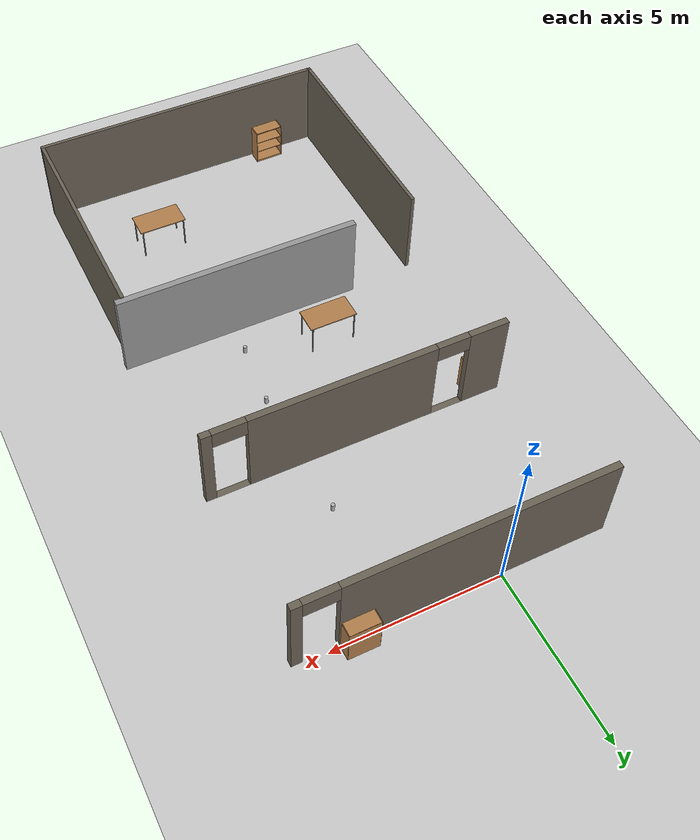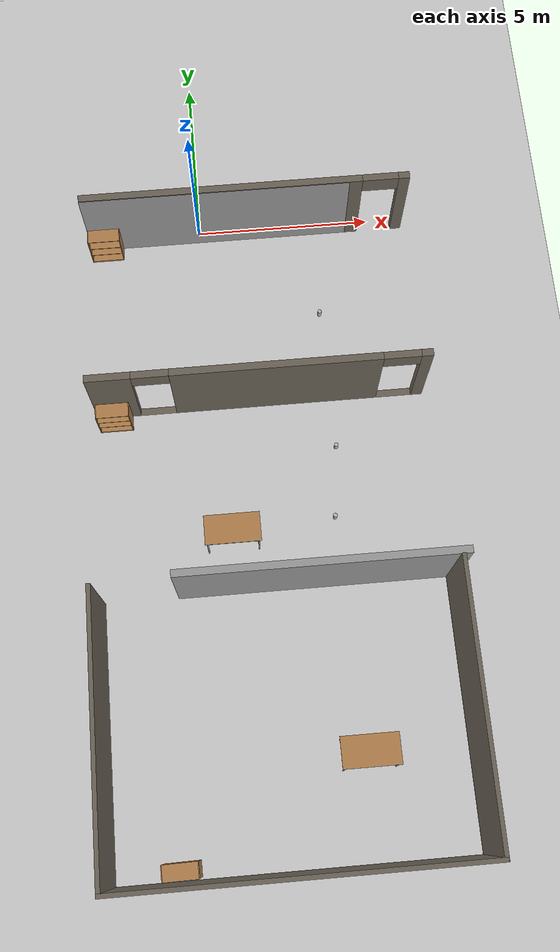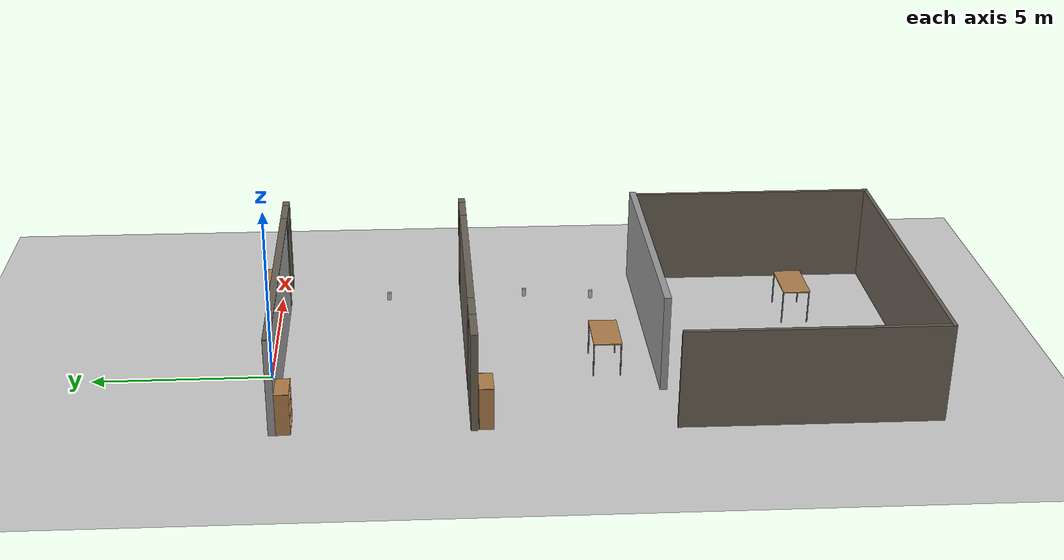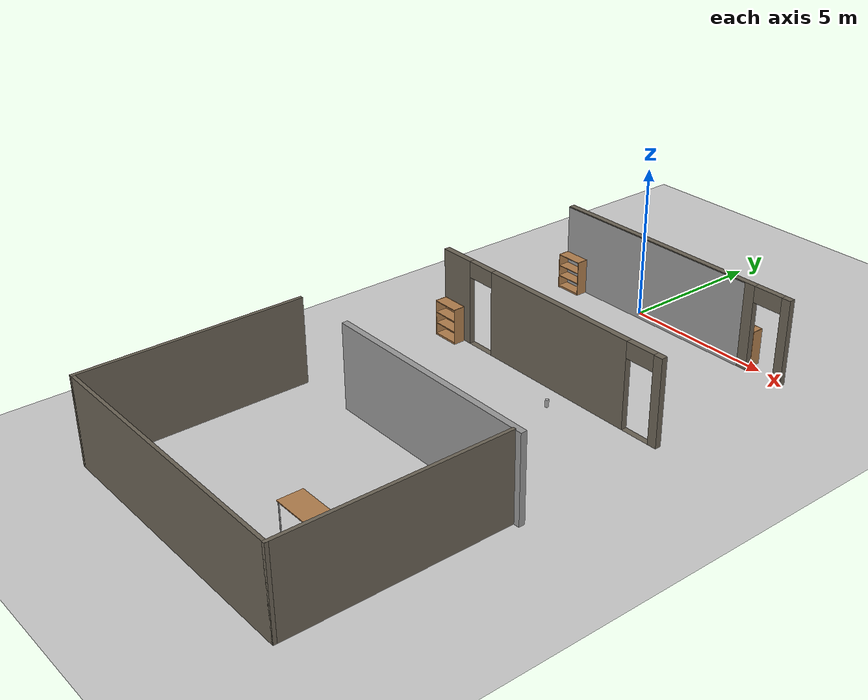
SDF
<sdf version="1.7">
 <world name="default">
  <light name="sun" type="directional">
   <pose>0 0 10 0 -0 0</pose>
   <diffuse>0.8 0.8 0.8 1</diffuse>
   <specular>0.2 0.2 0.2 1</specular>
   <attenuation>
    <range>1000</range>
    <constant>0.9</constant>
    <linear>0.01</linear>
    <quadratic>0.001</quadratic>
   </attenuation>
   <direction>-0.5 0.1 -0.9</direction>
   <spot><inner_angle>0</inner_angle><outer_angle>0</outer_angle><falloff>0</falloff></spot>
  </light>
  <model name="ground_plane">
   <static>1</static>
   <link name="link">
    <collision name="collision">
     <geometry><plane><normal>0 0 1</normal><size>100 100</size></plane></geometry>
     <surface><friction><ode><mu>100</mu><mu2>50</mu2></ode></friction></surface>
    </collision>
    <visual name="visual">
     <cast_shadows>0</cast_shadows>
     <geometry><plane><normal>0 0 1</normal><size>100 100</size></plane></geometry>
     <material>
      <script><uri>file://media/materials/scripts/gazebo.material</uri><name>Gazebo/Grey</name></script>
     </material>
    </visual>
   </link>
  </model>
  <gravity>0 0 -9.8</gravity>
  <magnetic_field>6e-06 2.3e-05 -4.2e-05</magnetic_field>
  <atmosphere type="adiabatic"/>
  <physics type="ode">
   <max_step_size>0.001</max_step_size>
   <real_time_factor>1</real_time_factor>
   <real_time_update_rate>1000</real_time_update_rate>
  </physics>
  <scene><ambient>0.4 0.4 0.4 1</ambient><background>0.7 0.7 0.7 1</background><shadows>1</shadows></scene>
  <spherical_coordinates>
   <surface_model>EARTH_WGS84</surface_model>
   <latitude_deg>0</latitude_deg>
   <longitude_deg>0</longitude_deg>
   <elevation>0</elevation>
   <heading_deg>0</heading_deg>
  </spherical_coordinates>
  <model name="table">
   <static>1</static>
   <link name="link">
    <collision name="surface">
     <pose>0 0 1 0 -0 0</pose>
     <geometry><box><size>1.5 0.8 0.03</size></box></geometry>
     <surface><friction><ode><mu>0.6</mu><mu2>0.6</mu2></ode></friction></surface>
    </collision>
    <visual name="visual1">
     <pose>0 0 1 0 -0 0</pose>
     <geometry><box><size>1.5 0.8 0.03</size></box></geometry>
     <material>
      <script><uri>file://media/materials/scripts/gazebo.material</uri><name>Gazebo/Wood</name></script>
     </material>
    </visual>
    <collision name="front_left_leg">
     <pose>0.68 0.38 0.5 0 -0 0</pose>
     <geometry><cylinder><radius>0.02</radius><length>1</length></cylinder></geometry>
    </collision>
    <visual name="front_left_leg">
     <pose>0.68 0.38 0.5 0 -0 0</pose>
     <geometry><cylinder><radius>0.02</radius><length>1</length></cylinder></geometry>
     <material>
      <script><uri>file://media/materials/scripts/gazebo.material</uri><name>Gazebo/Grey</name></script>
     </material>
    </visual>
    <collision name="front_right_leg">
     <pose>0.68 -0.38 0.5 0 -0 0</pose>
     <geometry><cylinder><radius>0.02</radius><length>1</length></cylinder></geometry>
    </collision>
    <visual name="front_right_leg">
     <pose>0.68 -0.38 0.5 0 -0 0</pose>
     <geometry><cylinder><radius>0.02</radius><length>1</length></cylinder></geometry>
     <material>
      <script><uri>file://media/materials/scripts/gazebo.material</uri><name>Gazebo/Grey</name></script>
     </material>
    </visual>
    <collision name="back_right_leg">
     <pose>-0.68 -0.38 0.5 0 -0 0</pose>
     <geometry><cylinder><radius>0.02</radius><length>1</length></cylinder></geometry>
    </collision>
    <visual name="back_right_leg">
     <pose>-0.68 -0.38 0.5 0 -0 0</pose>
     <geometry><cylinder><radius>0.02</radius><length>1</length></cylinder></geometry>
     <material>
      <script><uri>file://media/materials/scripts/gazebo.material</uri><name>Gazebo/Grey</name></script>
     </material>
    </visual>
    <collision name="back_left_leg">
     <pose>-0.68 0.38 0.5 0 -0 0</pose>
     <geometry><cylinder><radius>0.02</radius><length>1</length></cylinder></geometry>
    </collision>
    <visual name="back_left_leg">
     <pose>-0.68 0.38 0.5 0 -0 0</pose>
     <geometry><cylinder><radius>0.02</radius><length>1</length></cylinder></geometry>
     <material>
      <script><uri>file://media/materials/scripts/gazebo.material</uri><name>Gazebo/Grey</name></script>
     </material>
    </visual>
   </link>
   <pose>0.349528 -9.32869 0 0 -0 0</pose>
  </model>
  <model name="bookshelf">
   <static>1</static>
   <link name="link">
    <inertial><mass>1</mass></inertial>
    <collision name="back">
     <pose>0 0.005 0.6 0 -0 0</pose>
     <geometry><box><size>0.9 0.01 1.2</size></box></geometry>
    </collision>
    <visual name="visual1">
     <pose>0 0.005 0.6 0 -0 0</pose>
     <geometry><box><size>0.9 0.01 1.2</size></box></geometry>
     <material>
      <script><uri>file://media/materials/scripts/gazebo.material</uri><name>Gazebo/Wood</name></script>
     </material>
    </visual>
    <collision name="left_side">
     <pose>0.45 -0.195 0.6 0 -0 0</pose>
     <geometry><box><size>0.02 0.4 1.2</size></box></geometry>
    </collision>
    <visual name="visual2">
     <pose>0.45 -0.195 0.6 0 -0 0</pose>
     <geometry><box><size>0.02 0.4 1.2</size></box></geometry>
     <material>
      <script><uri>file://media/materials/scripts/gazebo.material</uri><name>Gazebo/Wood</name></script>
     </material>
    </visual>
    <collision name="right_side">
     <pose>-0.45 -0.195 0.6 0 -0 0</pose>
     <geometry><box><size>0.02 0.4 1.2</size></box></geometry>
    </collision>
    <visual name="visual3">
     <pose>-0.45 -0.195 0.6 0 -0 0</pose>
     <geometry><box><size>0.02 0.4 1.2</size></box></geometry>
     <material>
      <script><uri>file://media/materials/scripts/gazebo.material</uri><name>Gazebo/Wood</name></script>
     </material>
    </visual>
    <collision name="bottom">
     <pose>0 -0.195 0.03 0 -0 0</pose>
     <geometry><box><size>0.88 0.4 0.06</size></box></geometry>
    </collision>
    <visual name="visual4">
     <pose>0 -0.195 0.03 0 -0 0</pose>
     <geometry><box><size>0.88 0.4 0.06</size></box></geometry>
     <material>
      <script><uri>file://media/materials/scripts/gazebo.material</uri><name>Gazebo/Wood</name></script>
     </material>
    </visual>
    <collision name="top">
     <pose>0 -0.195 1.19 0 -0 0</pose>
     <geometry><box><size>0.88 0.4 0.02</size></box></geometry>
    </collision>
    <visual name="visual5">
     <pose>0 -0.195 1.19 0 -0 0</pose>
     <geometry><box><size>0.88 0.4 0.02</size></box></geometry>
     <material>
      <script><uri>file://media/materials/scripts/gazebo.material</uri><name>Gazebo/Wood</name></script>
     </material>
    </visual>
    <collision name="low_shelf">
     <pose>0 -0.195 0.43 0 -0 0</pose>
     <geometry><box><size>0.88 0.4 0.02</size></box></geometry>
    </collision>
    <visual name="visual6">
     <pose>0 -0.195 0.43 0 -0 0</pose>
     <geometry><box><size>0.88 0.4 0.02</size></box></geometry>
     <material>
      <script><uri>file://media/materials/scripts/gazebo.material</uri><name>Gazebo/Wood</name></script>
     </material>
    </visual>
    <collision name="high_shelf">
     <pose>0 -0.195 0.8 0 -0 0</pose>
     <geometry><box><size>0.88 0.4 0.02</size></box></geometry>
    </collision>
    <visual name="visual7">
     <pose>0 -0.195 0.8 0 -0 0</pose>
     <geometry><box><size>0.88 0.4 0.02</size></box></geometry>
     <material>
      <script><uri>file://media/materials/scripts/gazebo.material</uri><name>Gazebo/Wood</name></script>
     </material>
    </visual>
   </link>
   <pose>-2.68283 -5.62924 0 0 -0 0</pose>
  </model>
  <model name="beer">
   <link name="link">
    <pose>0 0 0.115 0 -0 0</pose>
    <inertial>
     <mass>0.39</mass>
     <inertia><ixx>0.00058</ixx><ixy>0</ixy><ixz>0</ixz><iyy>0.00058</iyy><iyz>0</iyz><izz>0.00019</izz></inertia>
    </inertial>
    <collision name="collision">
     <geometry><cylinder><radius>0.055</radius><length>0.23</length></cylinder></geometry>
    </collision>
    <visual name="visual">
     <geometry><cylinder><radius>0.055</radius><length>0.23</length></cylinder></geometry>
     <material>
      <script>
       <uri>model://beer/materials/scripts</uri>
       <uri>model://beer/materials/textures</uri>
       <name>Beer/Diffuse</name>
      </script>
     </material>
    </visual>
   </link>
   <pose>3.09989 -9.20005 0.77499 -1e-06 2.6e-05 0.030009</pose>
  </model>
  <model name="beer_0">
   <link name="link">
    <pose>0 0 0.115 0 -0 0</pose>
    <inertial>
     <mass>0.39</mass>
     <inertia><ixx>0.00058</ixx><ixy>0</ixy><ixz>0</ixz><iyy>0.00058</iyy><iyz>0</iyz><izz>0.00019</izz></inertia>
    </inertial>
    <collision name="collision">
     <geometry><cylinder><radius>0.055</radius><length>0.23</length></cylinder></geometry>
    </collision>
    <visual name="visual">
     <geometry><cylinder><radius>0.055</radius><length>0.23</length></cylinder></geometry>
     <material>
      <script>
       <uri>model://beer/materials/scripts</uri>
       <uri>model://beer/materials/textures</uri>
       <name>Beer/Diffuse</name>
      </script>
     </material>
    </visual>
   </link>
   <pose>3.25232 -3.26603 0.77499 1e-06 -2.8e-05 0.018189</pose>
  </model>
  <model name="table_1">
   <static>1</static>
   <link name="link">
    <collision name="surface">
     <pose>0 0 1 0 -0 0</pose>
     <geometry><box><size>1.5 0.8 0.03</size></box></geometry>
     <surface><friction><ode><mu>0.6</mu><mu2>0.6</mu2></ode></friction></surface>
    </collision>
    <visual name="visual1">
     <pose>0 0 1 0 -0 0</pose>
     <geometry><box><size>1.5 0.8 0.03</size></box></geometry>
     <material>
      <script><uri>file://media/materials/scripts/gazebo.material</uri><name>Gazebo/Wood</name></script>
     </material>
    </visual>
    <collision name="front_left_leg">
     <pose>0.68 0.38 0.5 0 -0 0</pose>
     <geometry><cylinder><radius>0.02</radius><length>1</length></cylinder></geometry>
    </collision>
    <visual name="front_left_leg">
     <pose>0.68 0.38 0.5 0 -0 0</pose>
     <geometry><cylinder><radius>0.02</radius><length>1</length></cylinder></geometry>
     <material>
      <script><uri>file://media/materials/scripts/gazebo.material</uri><name>Gazebo/Grey</name></script>
     </material>
    </visual>
    <collision name="front_right_leg">
     <pose>0.68 -0.38 0.5 0 -0 0</pose>
     <geometry><cylinder><radius>0.02</radius><length>1</length></cylinder></geometry>
    </collision>
    <visual name="front_right_leg">
     <pose>0.68 -0.38 0.5 0 -0 0</pose>
     <geometry><cylinder><radius>0.02</radius><length>1</length></cylinder></geometry>
     <material>
      <script><uri>file://media/materials/scripts/gazebo.material</uri><name>Gazebo/Grey</name></script>
     </material>
    </visual>
    <collision name="back_right_leg">
     <pose>-0.68 -0.38 0.5 0 -0 0</pose>
     <geometry><cylinder><radius>0.02</radius><length>1</length></cylinder></geometry>
    </collision>
    <visual name="back_right_leg">
     <pose>-0.68 -0.38 0.5 0 -0 0</pose>
     <geometry><cylinder><radius>0.02</radius><length>1</length></cylinder></geometry>
     <material>
      <script><uri>file://media/materials/scripts/gazebo.material</uri><name>Gazebo/Grey</name></script>
     </material>
    </visual>
    <collision name="back_left_leg">
     <pose>-0.68 0.38 0.5 0 -0 0</pose>
     <geometry><cylinder><radius>0.02</radius><length>1</length></cylinder></geometry>
    </collision>
    <visual name="back_left_leg">
     <pose>-0.68 0.38 0.5 0 -0 0</pose>
     <geometry><cylinder><radius>0.02</radius><length>1</length></cylinder></geometry>
     <material>
      <script><uri>file://media/materials/scripts/gazebo.material</uri><name>Gazebo/Grey</name></script>
     </material>
    </visual>
   </link>
   <pose>3.37991 -15.2712 0 0 -0 0</pose>
  </model>
  <model name="beer_4">
   <link name="link">
    <pose>0 0 0.115 0 -0 0</pose>
    <inertial>
     <mass>0.39</mass>
     <inertia><ixx>0.00058</ixx><ixy>0</ixy><ixz>0</ixz><iyy>0.00058</iyy><iyz>0</iyz><izz>0.00019</izz></inertia>
    </inertial>
    <collision name="collision">
     <geometry><cylinder><radius>0.055</radius><length>0.23</length></cylinder></geometry>
    </collision>
    <visual name="visual">
     <geometry><cylinder><radius>0.055</radius><length>0.23</length></cylinder></geometry>
     <material>
      <script>
       <uri>model://beer/materials/scripts</uri>
       <uri>model://beer/materials/textures</uri>
       <name>Beer/Diffuse</name>
      </script>
     </material>
    </visual>
   </link>
   <pose>3.32335 -7.24267 0.774992 6e-06 2.4e-05 0.032256</pose>
  </model>
  <model name="bookshelf_0">
   <static>1</static>
   <link name="link">
    <inertial><mass>1</mass></inertial>
    <collision name="back">
     <pose>0 0.005 0.6 0 -0 0</pose>
     <geometry><box><size>0.9 0.01 1.2</size></box></geometry>
    </collision>
    <visual name="visual1">
     <pose>0 0.005 0.6 0 -0 0</pose>
     <geometry><box><size>0.9 0.01 1.2</size></box></geometry>
     <material>
      <script><uri>file://media/materials/scripts/gazebo.material</uri><name>Gazebo/Wood</name></script>
     </material>
    </visual>
    <collision name="left_side">
     <pose>0.45 -0.195 0.6 0 -0 0</pose>
     <geometry><box><size>0.02 0.4 1.2</size></box></geometry>
    </collision>
    <visual name="visual2">
     <pose>0.45 -0.195 0.6 0 -0 0</pose>
     <geometry><box><size>0.02 0.4 1.2</size></box></geometry>
     <material>
      <script><uri>file://media/materials/scripts/gazebo.material</uri><name>Gazebo/Wood</name></script>
     </material>
    </visual>
    <collision name="right_side">
     <pose>-0.45 -0.195 0.6 0 -0 0</pose>
     <geometry><box><size>0.02 0.4 1.2</size></box></geometry>
    </collision>
    <visual name="visual3">
     <pose>-0.45 -0.195 0.6 0 -0 0</pose>
     <geometry><box><size>0.02 0.4 1.2</size></box></geometry>
     <material>
      <script><uri>file://media/materials/scripts/gazebo.material</uri><name>Gazebo/Wood</name></script>
     </material>
    </visual>
    <collision name="bottom">
     <pose>0 -0.195 0.03 0 -0 0</pose>
     <geometry><box><size>0.88 0.4 0.06</size></box></geometry>
    </collision>
    <visual name="visual4">
     <pose>0 -0.195 0.03 0 -0 0</pose>
     <geometry><box><size>0.88 0.4 0.06</size></box></geometry>
     <material>
      <script><uri>file://media/materials/scripts/gazebo.material</uri><name>Gazebo/Wood</name></script>
     </material>
    </visual>
    <collision name="top">
     <pose>0 -0.195 1.19 0 -0 0</pose>
     <geometry><box><size>0.88 0.4 0.02</size></box></geometry>
    </collision>
    <visual name="visual5">
     <pose>0 -0.195 1.19 0 -0 0</pose>
     <geometry><box><size>0.88 0.4 0.02</size></box></geometry>
     <material>
      <script><uri>file://media/materials/scripts/gazebo.material</uri><name>Gazebo/Wood</name></script>
     </material>
    </visual>
    <collision name="low_shelf">
     <pose>0 -0.195 0.43 0 -0 0</pose>
     <geometry><box><size>0.88 0.4 0.02</size></box></geometry>
    </collision>
    <visual name="visual6">
     <pose>0 -0.195 0.43 0 -0 0</pose>
     <geometry><box><size>0.88 0.4 0.02</size></box></geometry>
     <material>
      <script><uri>file://media/materials/scripts/gazebo.material</uri><name>Gazebo/Wood</name></script>
     </material>
    </visual>
    <collision name="high_shelf">
     <pose>0 -0.195 0.8 0 -0 0</pose>
     <geometry><box><size>0.88 0.4 0.02</size></box></geometry>
    </collision>
    <visual name="visual7">
     <pose>0 -0.195 0.8 0 -0 0</pose>
     <geometry><box><size>0.88 0.4 0.02</size></box></geometry>
     <material>
      <script><uri>file://media/materials/scripts/gazebo.material</uri><name>Gazebo/Wood</name></script>
     </material>
    </visual>
   </link>
   <pose>-2.72283 -0.27346 0 0 -0 0</pose>
  </model>
  <model name="cx">
   <pose>1.393 -9.0275 0 0 -0 0</pose>
   <link name="Wall_0">
    <pose>0.008998 8.85044 0 0 -0 0</pose>
    <visual name="Wall_0_Visual_0">
     <pose>-0.654815 0 1.416 0 -0 0</pose>
     <geometry><box><size>7.85937 0.2 2.832</size></box></geometry>
     <material>
      <script><uri>file://media/materials/scripts/gazebo.material</uri><name>Gazebo/Grey</name></script>
      <ambient>0.419608 0.388235 0.337255 1</ambient>
     </material>
     <meta><layer>0</layer></meta>
    </visual>
    <collision name="Wall_0_Collision_0">
     <geometry><box><size>7.85937 0.2 2.832</size></box></geometry>
     <pose>-0.654815 0 1.416 0 -0 0</pose>
    </collision>
    <visual name="Wall_0_Visual_1">
     <pose>4.42969 0 1.416 0 -0 0</pose>
     <geometry><box><size>0.30963 0.2 2.832</size></box></geometry>
     <material>
      <script><uri>file://media/materials/scripts/gazebo.material</uri><name>Gazebo/Grey</name></script>
      <ambient>0.419608 0.388235 0.337255 1</ambient>
     </material>
     <meta><layer>0</layer></meta>
    </visual>
    <collision name="Wall_0_Collision_1">
     <geometry><box><size>0.30963 0.2 2.832</size></box></geometry>
     <pose>4.42969 0 1.416 0 -0 0</pose>
    </collision>
    <visual name="Wall_0_Visual_2">
     <pose>3.77487 0 2.56575 0 -0 0</pose>
     <geometry><box><size>1 0.2 0.5325</size></box></geometry>
     <material>
      <script><uri>file://media/materials/scripts/gazebo.material</uri><name>Gazebo/Grey</name></script>
      <ambient>0.419608 0.388235 0.337255 1</ambient>
     </material>
     <meta><layer>0</layer></meta>
    </visual>
    <collision name="Wall_0_Collision_2">
     <geometry><box><size>1 0.2 0.5325</size></box></geometry>
     <pose>3.77487 0 2.56575 0 -0 0</pose>
    </collision>
   </link>
   <link name="Wall_14">
    <collision name="Wall_14_Collision">
     <geometry><box><size>7.174 0.11 2.83</size></box></geometry>
     <pose>0 0 1.415 0 -0 0</pose>
    </collision>
    <visual name="Wall_14_Visual">
     <pose>0 0 1.415 0 -0 0</pose>
     <geometry><box><size>7.174 0.11 2.83</size></box></geometry>
     <material>
      <script><uri>file://media/materials/scripts/gazebo.material</uri><name>Gazebo/Grey</name></script>
      <ambient>0.419608 0.388235 0.337255 1</ambient>
     </material>
     <meta><layer>0</layer></meta>
    </visual>
    <pose>4.637 -5.4405 0 0 -0 -1.5708</pose>
   </link>
   <link name="Wall_17">
    <collision name="Wall_17_Collision">
     <geometry><box><size>9.384 0.11 2.83</size></box></geometry>
     <pose>0 0 1.415 0 -0 0</pose>
    </collision>
    <visual name="Wall_17_Visual">
     <pose>0 0 1.415 0 -0 0</pose>
     <geometry><box><size>9.384 0.11 2.83</size></box></geometry>
     <material>
      <script><uri>file://media/materials/scripts/gazebo.material</uri><name>Gazebo/Grey</name></script>
      <ambient>0.419608 0.388235 0.337255 1</ambient>
     </material>
     <meta><layer>0</layer></meta>
    </visual>
    <pose>0 -8.9725 0 0 -0 0</pose>
   </link>
   <link name="Wall_5">
    <pose>-0.0085 3.5245 0 0 -0 0</pose>
    <visual name="Wall_5_Visual_0">
     <pose>-3.97687 0 1.415 0 -0 0</pose>
     <geometry><box><size>1.21427 0.2 2.83</size></box></geometry>
     <material>
      <script><uri>file://media/materials/scripts/gazebo.material</uri><name>Gazebo/Grey</name></script>
      <ambient>0.419608 0.388235 0.337255 1</ambient>
     </material>
     <meta><layer>0</layer></meta>
    </visual>
    <collision name="Wall_5_Collision_0">
     <geometry><box><size>1.21427 0.2 2.83</size></box></geometry>
     <pose>-3.97687 0 1.415 0 -0 0</pose>
    </collision>
    <visual name="Wall_5_Visual_1">
     <pose>0.452937 0 1.415 0 -0 0</pose>
     <geometry><box><size>5.64534 0.2 2.83</size></box></geometry>
     <material>
      <script><uri>file://media/materials/scripts/gazebo.material</uri><name>Gazebo/Grey</name></script>
      <ambient>0.419608 0.388235 0.337255 1</ambient>
     </material>
     <meta><layer>0</layer></meta>
    </visual>
    <collision name="Wall_5_Collision_1">
     <geometry><box><size>5.64534 0.2 2.83</size></box></geometry>
     <pose>0.452937 0 1.415 0 -0 0</pose>
    </collision>
    <visual name="Wall_5_Visual_2">
     <pose>4.4298 0 1.415 0 -0 0</pose>
     <geometry><box><size>0.308395 0.2 2.83</size></box></geometry>
     <material>
      <script><uri>file://media/materials/scripts/gazebo.material</uri><name>Gazebo/Grey</name></script>
      <ambient>0.419608 0.388235 0.337255 1</ambient>
     </material>
     <meta><layer>0</layer></meta>
    </visual>
    <collision name="Wall_5_Collision_2">
     <geometry><box><size>0.308395 0.2 2.83</size></box></geometry>
     <pose>4.4298 0 1.415 0 -0 0</pose>
    </collision>
    <visual name="Wall_5_Visual_3">
     <pose>-2.86973 0 0 0 -0 0</pose>
     <geometry><box><size>1 0.2 0</size></box></geometry>
     <material>
      <script><uri>file://media/materials/scripts/gazebo.material</uri><name>Gazebo/Grey</name></script>
      <ambient>0.419608 0.388235 0.337255 1</ambient>
     </material>
     <meta><layer>0</layer></meta>
    </visual>
    <collision name="Wall_5_Collision_3">
     <geometry><box><size>1 0.2 0</size></box></geometry>
     <pose>-2.86973 0 0 0 -0 0</pose>
    </collision>
    <visual name="Wall_5_Visual_4">
     <pose>3.77561 0 0 0 -0 0</pose>
     <geometry><box><size>1 0.2 0</size></box></geometry>
     <material>
      <script><uri>file://media/materials/scripts/gazebo.material</uri><name>Gazebo/Grey</name></script>
      <ambient>0.419608 0.388235 0.337255 1</ambient>
     </material>
     <meta><layer>0</layer></meta>
    </visual>
    <collision name="Wall_5_Collision_4">
     <geometry><box><size>1 0.2 0</size></box></geometry>
     <pose>3.77561 0 0 0 -0 0</pose>
    </collision>
    <visual name="Wall_5_Visual_5">
     <pose>-2.86973 0 2.565 0 -0 0</pose>
     <geometry><box><size>1 0.2 0.53</size></box></geometry>
     <material>
      <script><uri>file://media/materials/scripts/gazebo.material</uri><name>Gazebo/Grey</name></script>
      <ambient>0.419608 0.388235 0.337255 1</ambient>
     </material>
     <meta><layer>0</layer></meta>
    </visual>
    <collision name="Wall_5_Collision_5">
     <geometry><box><size>1 0.2 0.53</size></box></geometry>
     <pose>-2.86973 0 2.565 0 -0 0</pose>
    </collision>
    <visual name="Wall_5_Visual_6">
     <pose>3.77561 0 2.565 0 -0 0</pose>
     <geometry><box><size>1 0.2 0.53</size></box></geometry>
     <material>
      <script><uri>file://media/materials/scripts/gazebo.material</uri><name>Gazebo/Grey</name></script>
      <ambient>0.419608 0.388235 0.337255 1</ambient>
     </material>
     <meta><layer>0</layer></meta>
    </visual>
    <collision name="Wall_5_Collision_6">
     <geometry><box><size>1 0.2 0.53</size></box></geometry>
     <pose>3.77561 0 2.565 0 -0 0</pose>
    </collision>
   </link>
   <link name="Wall_7">
    <collision name="Wall_7_Collision">
     <geometry><box><size>7.174 0.11 2.83</size></box></geometry>
     <pose>0 0 1.415 0 -0 0</pose>
    </collision>
    <visual name="Wall_7_Visual">
     <pose>0 0 1.415 0 -0 0</pose>
     <geometry><box><size>7.174 0.11 2.83</size></box></geometry>
     <material>
      <script><uri>file://media/materials/scripts/gazebo.material</uri><name>Gazebo/Grey</name></script>
      <ambient>0.419608 0.388235 0.337255 1</ambient>
     </material>
     <meta><layer>0</layer></meta>
    </visual>
    <pose>-4.637 -5.4405 0 0 -0 -1.5708</pose>
   </link>
   <static>1</static>
  </model>
  <model name="grey_wall">
   <static>1</static>
   <link name="link">
    <pose>0 0 1.4 0 -0 0</pose>
    <collision name="collision"><geometry><box><size>7.5 0.2 2.8</size></box></geometry></collision>
    <visual name="visual">
     <cast_shadows>0</cast_shadows>
     <geometry><box><size>7.5 0.2 2.8</size></box></geometry>
     <material>
      <script>
       <uri>model://grey_wall/materials/scripts</uri>
       <uri>model://grey_wall/materials/textures</uri>
       <name>vrc/grey_wall</name>
      </script>
     </material>
    </visual>
   </link>
   <pose>2.52696 -10.7965 0 0 -0 0</pose>
  </model>
  <model name="grey_wall_0">
   <static>1</static>
   <link name="link">
    <pose>0 0 1.4 0 -0 0</pose>
    <collision name="collision"><geometry><box><size>7.5 0.2 2.8</size></box></geometry></collision>
    <visual name="visual">
     <cast_shadows>0</cast_shadows>
     <geometry><box><size>7.5 0.2 2.8</size></box></geometry>
     <material>
      <script>
       <uri>model://grey_wall/materials/scripts</uri>
       <uri>model://grey_wall/materials/textures</uri>
       <name>vrc/grey_wall</name>
      </script>
     </material>
    </visual>
   </link>
   <pose>0.562493 -0.178041 0 0 -0 0</pose>
  </model>
  <model name="bookshelf_1">
   <static>1</static>
   <link name="link">
    <inertial><mass>1</mass></inertial>
    <collision name="back">
     <pose>0 0.005 0.6 0 -0 0</pose>
     <geometry><box><size>0.9 0.01 1.2</size></box></geometry>
    </collision>
    <visual name="visual1">
     <pose>0 0.005 0.6 0 -0 0</pose>
     <geometry><box><size>0.9 0.01 1.2</size></box></geometry>
     <material>
      <script><uri>file://media/materials/scripts/gazebo.material</uri><name>Gazebo/Wood</name></script>
     </material>
    </visual>
    <collision name="left_side">
     <pose>0.45 -0.195 0.6 0 -0 0</pose>
     <geometry><box><size>0.02 0.4 1.2</size></box></geometry>
    </collision>
    <visual name="visual2">
     <pose>0.45 -0.195 0.6 0 -0 0</pose>
     <geometry><box><size>0.02 0.4 1.2</size></box></geometry>
     <material>
      <script><uri>file://media/materials/scripts/gazebo.material</uri><name>Gazebo/Wood</name></script>
     </material>
    </visual>
    <collision name="right_side">
     <pose>-0.45 -0.195 0.6 0 -0 0</pose>
     <geometry><box><size>0.02 0.4 1.2</size></box></geometry>
    </collision>
    <visual name="visual3">
     <pose>-0.45 -0.195 0.6 0 -0 0</pose>
     <geometry><box><size>0.02 0.4 1.2</size></box></geometry>
     <material>
      <script><uri>file://media/materials/scripts/gazebo.material</uri><name>Gazebo/Wood</name></script>
     </material>
    </visual>
    <collision name="bottom">
     <pose>0 -0.195 0.03 0 -0 0</pose>
     <geometry><box><size>0.88 0.4 0.06</size></box></geometry>
    </collision>
    <visual name="visual4">
     <pose>0 -0.195 0.03 0 -0 0</pose>
     <geometry><box><size>0.88 0.4 0.06</size></box></geometry>
     <material>
      <script><uri>file://media/materials/scripts/gazebo.material</uri><name>Gazebo/Wood</name></script>
     </material>
    </visual>
    <collision name="top">
     <pose>0 -0.195 1.19 0 -0 0</pose>
     <geometry><box><size>0.88 0.4 0.02</size></box></geometry>
    </collision>
    <visual name="visual5">
     <pose>0 -0.195 1.19 0 -0 0</pose>
     <geometry><box><size>0.88 0.4 0.02</size></box></geometry>
     <material>
      <script><uri>file://media/materials/scripts/gazebo.material</uri><name>Gazebo/Wood</name></script>
     </material>
    </visual>
    <collision name="low_shelf">
     <pose>0 -0.195 0.43 0 -0 0</pose>
     <geometry><box><size>0.88 0.4 0.02</size></box></geometry>
    </collision>
    <visual name="visual6">
     <pose>0 -0.195 0.43 0 -0 0</pose>
     <geometry><box><size>0.88 0.4 0.02</size></box></geometry>
     <material>
      <script><uri>file://media/materials/scripts/gazebo.material</uri><name>Gazebo/Wood</name></script>
     </material>
    </visual>
    <collision name="high_shelf">
     <pose>0 -0.195 0.8 0 -0 0</pose>
     <geometry><box><size>0.88 0.4 0.02</size></box></geometry>
    </collision>
    <visual name="visual7">
     <pose>0 -0.195 0.8 0 -0 0</pose>
     <geometry><box><size>0.88 0.4 0.02</size></box></geometry>
     <material>
      <script><uri>file://media/materials/scripts/gazebo.material</uri><name>Gazebo/Wood</name></script>
     </material>
    </visual>
   </link>
   <pose>-1.49619 -17.8869 0 0 0 -3.12479</pose>
  </model>
  <model name="bookshelf_2">
   <static>1</static>
   <link name="link">
    <inertial><mass>1</mass></inertial>
    <collision name="back">
     <pose>0 0.005 0.6 0 -0 0</pose>
     <geometry><box><size>0.9 0.01 1.2</size></box></geometry>
    </collision>
    <visual name="visual1">
     <pose>0 0.005 0.6 0 -0 0</pose>
     <geometry><box><size>0.9 0.01 1.2</size></box></geometry>
     <material>
      <script><uri>file://media/materials/scripts/gazebo.material</uri><name>Gazebo/Wood</name></script>
     </material>
    </visual>
    <collision name="left_side">
     <pose>0.45 -0.195 0.6 0 -0 0</pose>
     <geometry><box><size>0.02 0.4 1.2</size></box></geometry>
    </collision>
    <visual name="visual2">
     <pose>0.45 -0.195 0.6 0 -0 0</pose>
     <geometry><box><size>0.02 0.4 1.2</size></box></geometry>
     <material>
      <script><uri>file://media/materials/scripts/gazebo.material</uri><name>Gazebo/Wood</name></script>
     </material>
    </visual>
    <collision name="right_side">
     <pose>-0.45 -0.195 0.6 0 -0 0</pose>
     <geometry><box><size>0.02 0.4 1.2</size></box></geometry>
    </collision>
    <visual name="visual3">
     <pose>-0.45 -0.195 0.6 0 -0 0</pose>
     <geometry><box><size>0.02 0.4 1.2</size></box></geometry>
     <material>
      <script><uri>file://media/materials/scripts/gazebo.material</uri><name>Gazebo/Wood</name></script>
     </material>
    </visual>
    <collision name="bottom">
     <pose>0 -0.195 0.03 0 -0 0</pose>
     <geometry><box><size>0.88 0.4 0.06</size></box></geometry>
    </collision>
    <visual name="visual4">
     <pose>0 -0.195 0.03 0 -0 0</pose>
     <geometry><box><size>0.88 0.4 0.06</size></box></geometry>
     <material>
      <script><uri>file://media/materials/scripts/gazebo.material</uri><name>Gazebo/Wood</name></script>
     </material>
    </visual>
    <collision name="top">
     <pose>0 -0.195 1.19 0 -0 0</pose>
     <geometry><box><size>0.88 0.4 0.02</size></box></geometry>
    </collision>
    <visual name="visual5">
     <pose>0 -0.195 1.19 0 -0 0</pose>
     <geometry><box><size>0.88 0.4 0.02</size></box></geometry>
     <material>
      <script><uri>file://media/materials/scripts/gazebo.material</uri><name>Gazebo/Wood</name></script>
     </material>
    </visual>
    <collision name="low_shelf">
     <pose>0 -0.195 0.43 0 -0 0</pose>
     <geometry><box><size>0.88 0.4 0.02</size></box></geometry>
    </collision>
    <visual name="visual6">
     <pose>0 -0.195 0.43 0 -0 0</pose>
     <geometry><box><size>0.88 0.4 0.02</size></box></geometry>
     <material>
      <script><uri>file://media/materials/scripts/gazebo.material</uri><name>Gazebo/Wood</name></script>
     </material>
    </visual>
    <collision name="high_shelf">
     <pose>0 -0.195 0.8 0 -0 0</pose>
     <geometry><box><size>0.88 0.4 0.02</size></box></geometry>
    </collision>
    <visual name="visual7">
     <pose>0 -0.195 0.8 0 -0 0</pose>
     <geometry><box><size>0.88 0.4 0.02</size></box></geometry>
     <material>
      <script><uri>file://media/materials/scripts/gazebo.material</uri><name>Gazebo/Wood</name></script>
     </material>
    </visual>
   </link>
   <pose>4.19564 0.355836 0 0 -0 0</pose>
  </model>
 </world>
</sdf>
